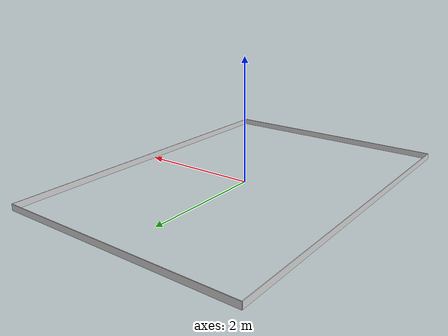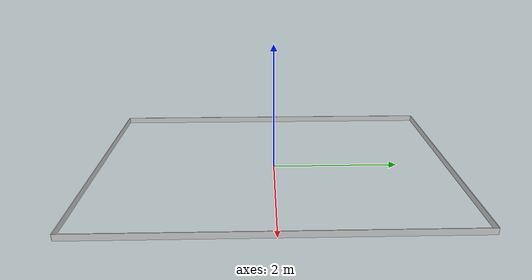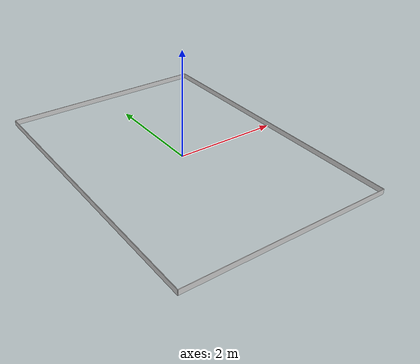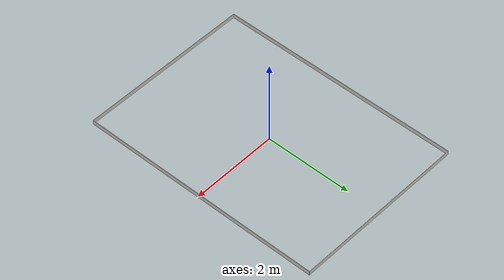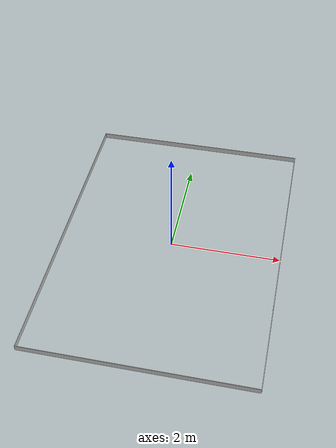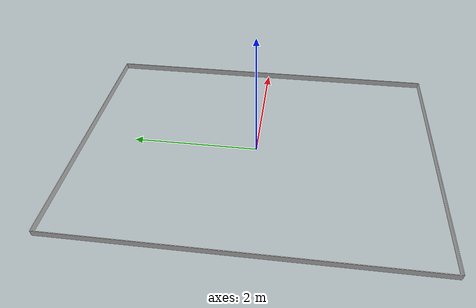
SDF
<sdf version="1.5">
 <world name="default">
  <include><uri>model://sun</uri></include>
  <model name="walls">
   <static>true</static>
   <link name="right_wall">
    <collision name="right_wall_collision">
     <pose>0 -2.8 0.05 0 0 0</pose>
     <geometry><box><size>4 0.01 0.1</size></box></geometry>
    </collision>
    <visual name="right_wall_visual">
     <pose>0 -2.8 0.05 0 0 0</pose>
     <cast_shadows>false</cast_shadows>
     <geometry><box><size>4 0.01 0.1</size></box></geometry>
     <material>
      <ambient>0.8 0.8 0.8 1</ambient>
      <diffuse>0.8 0.8 0.8 1</diffuse>
      <specular>0 0 0 0</specular>
      <emissive>0 0 0 1</emissive>
     </material>
    </visual>
   </link>
   <link name="left_wall">
    <collision name="left_wall_collision">
     <pose>0 2.8 0.05 0 0 0</pose>
     <geometry><box><size>4 0.01 0.1</size></box></geometry>
    </collision>
    <visual name="left_wall_visual">
     <pose>0 2.8 0.05 0 0 0</pose>
     <cast_shadows>false</cast_shadows>
     <geometry><box><size>4 0.01 0.1</size></box></geometry>
     <material>
      <ambient>0.8 0.8 0.8 1</ambient>
      <diffuse>0.8 0.8 0.8 1</diffuse>
      <specular>0 0 0 0</specular>
      <emissive>0 0 0 1</emissive>
     </material>
    </visual>
   </link>
   <link name="front_wall">
    <collision name="front_wall_collision">
     <pose>2 0 0.05 0 0 0</pose>
     <geometry><box><size>0.01 5.6 0.1</size></box></geometry>
    </collision>
    <visual name="front_wall_visual">
     <pose>2 0 0.05 0 0 0</pose>
     <cast_shadows>false</cast_shadows>
     <geometry><box><size>0.01 5.6 0.1</size></box></geometry>
     <material>
      <ambient>0.8 0.8 0.8 1</ambient>
      <diffuse>0.8 0.8 0.8 1</diffuse>
      <specular>0 0 0 0</specular>
      <emissive>0 0 0 1</emissive>
     </material>
    </visual>
   </link>
   <link name="back_wall">
    <collision name="back_wall_collision">
     <pose>-2 0 0.05 0 0 0</pose>
     <geometry><box><size>0.01 5.6 0.1</size></box></geometry>
    </collision>
    <visual name="back_wall_visual">
     <pose>-2 0 0.05 0 0 0</pose>
     <cast_shadows>false</cast_shadows>
     <geometry><box><size>0.01 5.6 0.1</size></box></geometry>
     <material>
      <ambient>0.8 0.8 0.8 1</ambient>
      <diffuse>0.8 0.8 0.8 1</diffuse>
      <specular>0 0 0 0</specular>
      <emissive>0 0 0 1</emissive>
     </material>
    </visual>
   </link>
  </model>
 </world>
</sdf>
